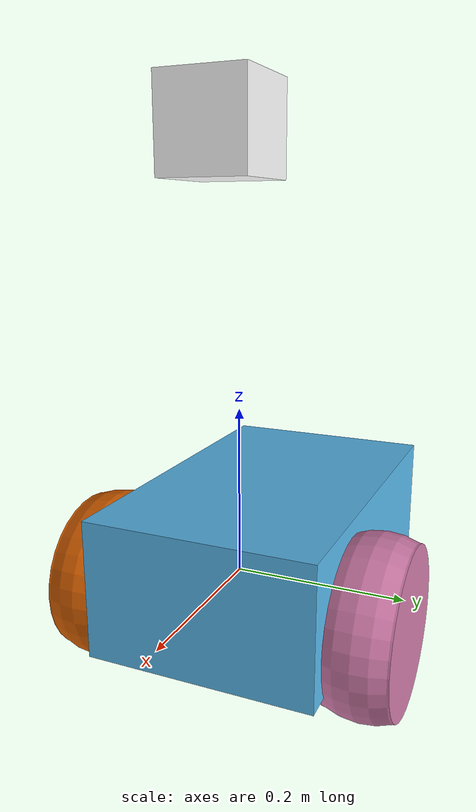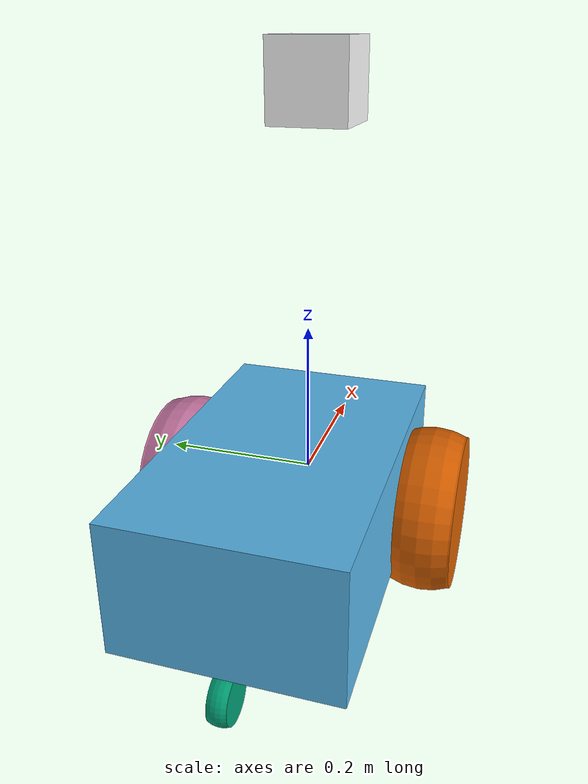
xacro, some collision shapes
<?xml version="1.0"?>
<robot name="pioneer2dx" xmlns:xacro="http://ros.org/wiki/xacro">
	<material name="chasis_gazebo">
		<color rgba="1 0 0 1" />
	</material>
	<material name="ruedas_gazebo">
		<color rgba="0 0 0 1" />
	</material>
	<link name="base_link" />
	<joint name="base_link_to_chassis" type="fixed">
		<parent link="base_link" />
		<child link="chassis" />
		<origin xyz="-0.1 0 0" rpy="0 0 0" />
	</joint>
	<link name="chassis">
		<origin xyz="0 0 0.16" rpy="0 0 0" />
		<inertial>
			<mass value="10.0" />
			<inertia ixx="0.088" iyy="0.1965" izz="0.2365" ixz="0" ixy="0" iyz="0" /> <!-- Inertia of a cuboid, it depends on mass>-->
		</inertial>
		<collision name="chasis_collision">
			<geometry>
				<box size="0.445 0.277 0.17" />
			</geometry>
		</collision>
		<visual name="chasis_visual">
			<origin xyz="0 0 0.04" rpy="0 0 0" />
			<geometry>
				<mesh filename="package://pioneer2dx/meshes/chassis.dae" />
			</geometry>
		</visual>
	</link>
	<link name="castor">

		<inertial>
			<mass value="0.15" />
			<inertia ixx="4.55e-4" izz="4.55e-4" iyy="7.5e-4" ixz="0.0" ixy="0.0" iyz="0.0" />
		</inertial>
		<collision name="castor_collision">
			<origin xyz="0 0 0" rpy="0 0 0" />
			<geometry>
				<mesh filename="package://pioneer2dx/meshes/wheel_v5.dae" scale="0.3 0.3 0.3" /> <!--21.6cm de diametro por 8cm de ancho perfil esferico -->
			</geometry>
			<surface>
				<friction>
					<ode>
						<mu>1.0</mu>
						<mu2>1.0</mu2>
						<slip1>0</slip1>
						<slip2>0</slip2>
						<maxVel>0.0</maxVel>
						<minDepth>0.001</minDepth>
					</ode>
				</friction>
			</surface>
		</collision>
		<visual name="castor_visual">
			<origin xyz="0 0 0" rpy="0 0 0" />
			<geometry>
				<mesh filename="package://pioneer2dx/meshes/wheel_v5.dae" scale="0.3 0.3 0.3" /> <!--21.6cm de diametro por 8cm de ancho perfil esferico -->
			</geometry>

		</visual>

	</link>
	<link name="plate_castor">
		<inertial>
			<mass value="0.01" />
			<inertia ixx="4.55e-5" izz="4.55e-5" iyy="4.55e-5" ixz="0.0" ixy="0.0" iyz="0.0" />
		</inertial>
		<collision name="castor_plate_collision">
			<origin xyz="0 0 0" rpy="0 0 0" />
			<geometry>
				<cylinder length="0.01" radius="0.01" />
			</geometry>
		</collision>
		<visual name="castor_plate_visual">
			<origin xyz="0 0 0" rpy="0 0 0" />
			<geometry>
				<cylinder length="0.01" radius="0.01" />
			</geometry>
		</visual>

	</link>

	<link name="plate_castor2">
		<inertial>
			<mass value="0.01" />
			<inertia ixx="4.55e-5" izz="4.55e-5" iyy="4.55e-5" ixz="0.0" ixy="0.0" iyz="0.0" />
		</inertial>
		<collision name="castor_plate_collision2">
			<origin xyz="0 0 0" rpy="0 0 0" />
			<geometry>
				<cylinder length="0.01" radius="0.01" />
			</geometry>
		</collision>
		<visual name="castor_plate_visual2">
			<origin xyz="0 0 0" rpy="0 0 0" />
			<geometry>
				<cylinder length="0.01" radius="0.01" />
			</geometry>
		</visual>

	</link>

	<joint name="chassis_plate" type="fixed">
		<origin xyz="-0.2 0 -0.1" rpy="0 0 0" />
		<parent link="chassis" />
		<child link="plate_castor2" />
	</joint>
	<joint name="plate2_plate" type="continuous">
		<origin xyz="0 0 -0.01" rpy="0 0 0" />
		<parent link="plate_castor2" />
		<child link="plate_castor" />
		<axis xyz="0 0 1" />
		<dynamics damping="0.005" friction="0.01" />
	</joint>

	<joint name="plate_castor_joint" type="continuous">
		<origin xyz="-0.01 0 -0.01" rpy="0 0 0" />
		<parent link="plate_castor" />
		<child link="castor" />
		<axis xyz="0 1 0" />
		<dynamics damping="0.005" friction="0.01" />
	</joint>

	<xacro:include filename="$(find gazebo_ros_motors)/xacro/dc_motor.xacro" />

	<xacro:macro name="wheel" params="name pos">
		<xacro:property name="position" value="0.1 ${pos*0.17} -0.037" />
		<xacro:property name="position2" value="0 0 0" />
		<xacro:property name="orientation" value="1.57 0 0" />
		<link name="${name}_wheel">
			<inertial>
				<mass value="1.0" />
				<inertia ixx="3.0334e-3" izz="5.0e-3" iyy="4.55e-3" ixz="0.0" ixy="0.0" iyz="0.0" />
			</inertial>
			<collision name="${name}_collision">
				<origin xyz="${position2}" rpy="${orientation}" />
				<geometry>
					<mesh filename="package://pioneer2dx/meshes/wheel_v5.dae" /> <!--21.6cm de diametro por 8cm de ancho perfil esferico -->
				</geometry>
				<surface>
					<friction>
						<ode>
							<mu>0.16</mu>
							<mu2>0.16</mu2>
							<slip1>0</slip1>
							<slip2>0</slip2>
							<maxVel>0.0</maxVel>
							<minDepth>0.001</minDepth>
						</ode>
					</friction>
				</surface>
			</collision>
			<visual name="${name}_visual">
				<origin xyz="${position2}" rpy="${orientation}" />
				<geometry>
					<mesh filename="package://pioneer2dx/meshes/wheel_v5.dae" /> <!--21.6cm de diametro por 8cm de ancho perfil esferico -->
				</geometry>

			</visual>
		</link>

		<xacro:dc_motor motor_name="${name}_dc_motor" parent_link="chassis" child_link="${name}_wheel">
			<xacro:property name="params_yaml" value="$(find gazebo_ros_motors)/params/dc_motor.yaml" />
			<origin xyz="${position}" rpy="-1.57 0 0" />
			<axis xyz="0 0 1" />
		</xacro:dc_motor>-->

	</xacro:macro>
	<xacro:wheel name="right" pos="-1" />
	<xacro:wheel name="left" pos="1" />

	<xacro:macro name="Camara_config" params="name" >
		<!-- Crea una caja cuadrada con un enlace, y le pone un nombre. El pluging esta en la linea 296 para abajo -->
		<link name="Camera">
			<visual name="camera_visual">
				<origin xyz="0 0 0" rpy="0 0 0" />
				<geometry>
					<box size="0.1 0.1 0.1" />
				</geometry>
				<material name="camera_color">
					<color rgba="1 1 1 1" />
				</material>

			</visual>
		</link>
		<joint name="camera_to_chassis" type="fixed">
			<parent link="chassis" />
			<child link="Camera" />
			<origin xyz="0.14 0 0.5" rpy="0 0 0" />
			-->
		</joint>

		<!-- generate an optical frame
      http://www.ros.org/reps/rep-0103.html#suffix-frames
      so that ros and opencv can operate on the camera frame correctly
      -->
		<joint name="camera_optical_joint" type="fixed">
			<!-- these values have to be these values otherwise the gazebo camera
        image won't be aligned properly with the frame it is supposedly
        originating from -->
			<origin xyz="0 0 0" rpy="${-pi/2} 0 ${-pi/2}" />
			<parent link="Camera" />
			<child link="camera_link_optical" />
		</joint>

		<link name="camera_link_optical"></link>
	</xacro:macro>

	<xacro:macro name="lidar_link" params="name posrpy posz">

		<link name="${name}">
			<visual>
				<origin xyz="0 0 0" rpy="0 0 0" />
				<geometry>
					<mesh filename="package://pioneer2dx/meshes/hokuyo.dae" />
				</geometry>
			</visual>
		</link>
		<joint name="lidar_to_chassis_${name}" type="fixed">
			<parent link="chassis" />
			<child link="${name}" />
			<axis xyz="0 1 0" />
			<origin xyz="0.14 0 ${posz}" rpy="${posrpy}" />
		</joint>

	</xacro:macro>
	<!-- Fuente: http://gazebosim.org/tutorials?tut=ros_gzplugins -->
	<!-- Plugins -->
	<!-- camera -->

	<xacro:include filename="$(find pioneer2dx)/plugins/camera_stereo_plug.xacro"/>-->
	<xacro:Camara_config name="Camara_1"/>-->

</robot>

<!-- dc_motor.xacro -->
<robot xmlns:xacro="http://www.ros.org/wiki/xacro">

<xacro:macro name="dc_motor" params="motor_name parent_link child_link *origin *axis">
  <xacro:property name="motor_param" value="${xacro.load_yaml(params_yaml)}"/>
  <joint name="${motor_name}" type="continuous">
      <parent link="${parent_link}"/>
      <child link="${child_link}"/>
      <xacro:insert_block name="origin"/>
      <xacro:insert_block name="axis"/>
      <dynamics damping="${motor_param['joint_damping']}" friction="${motor_param['joint_friction']}"/>
  </joint>
  <gazebo reference="${motor_name}">
    <provideFeedback>true</provideFeedback>
  </gazebo>
  <gazebo>
    <plugin name="${motor_name}_plugin" filename="libgazebo_ros_dc_motor.so">
      <motor_shaft_joint>${motor_name}</motor_shaft_joint>
      <motor_wrench_frame>${child_link}</motor_wrench_frame>
      <command_topic>${motor_name}/command</command_topic>
      <velocity_topic>${motor_name}/velocity</velocity_topic>
      <encoder_topic>${motor_name}/encoder</encoder_topic>
      <current_topic>${motor_name}/current</current_topic>
      <supply_topic>${motor_name}/supply_voltage</supply_topic>
      <publish_encoder>${motor_param['publish_encoder']}</publish_encoder>
      <publish_velocity>${motor_param['publish_velocity']}</publish_velocity>
      <publish_current>${motor_param['publish_current']}</publish_current>
	      <!-- Nuevo, editado -->
	      <!-- Nuevo, editado -->
      <publish_motor_joint_state>${motor_param['publish_motor_joint_state']}</publish_motor_joint_state>
      <update_rate>${motor_param['update_rate']}</update_rate>
      <motor_nominal_voltage>${motor_param['motor_nominal_voltage']}</motor_nominal_voltage>
      <moment_of_inertia>${motor_param['moment_of_inertia']}</moment_of_inertia>
      <armature_damping_ratio>${motor_param['armature_damping_ratio']}</armature_damping_ratio>
      <electromotive_force_constant>${motor_param['electromotive_force_constant']}</electromotive_force_constant>
      <electric_resistance>${motor_param['electric_resistance']}</electric_resistance>
      <electric_inductance>${motor_param['electric_inductance']}</electric_inductance>
      <gear_ratio>${motor_param['gear_ratio']}</gear_ratio>
      <encoder_ppr>${motor_param['encoder_ppr']}</encoder_ppr>
      <velocity_noise>${motor_param['velocity_noise']}</velocity_noise>
      <rosDebugLevel>Debug</rosDebugLevel>
    </plugin>
  </gazebo>

</xacro:macro>

</robot>
